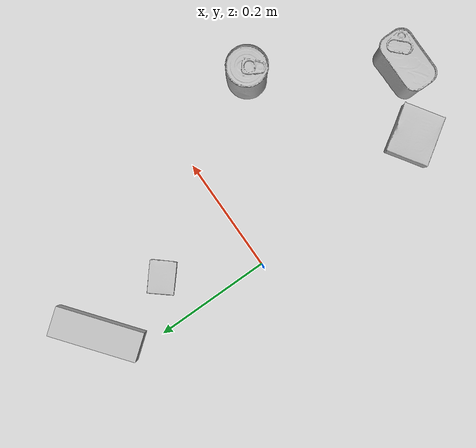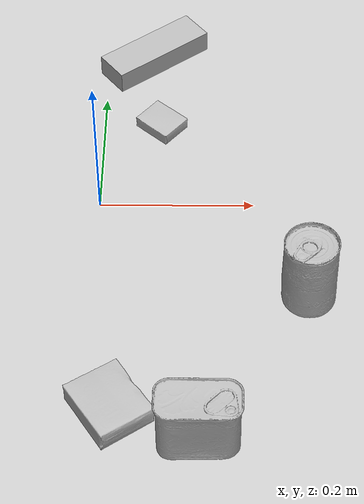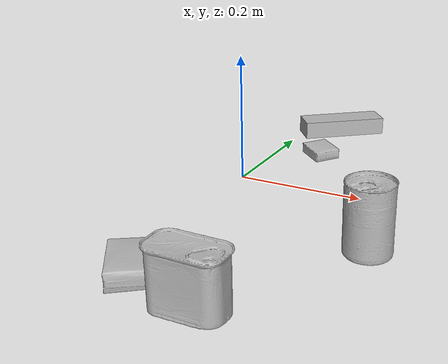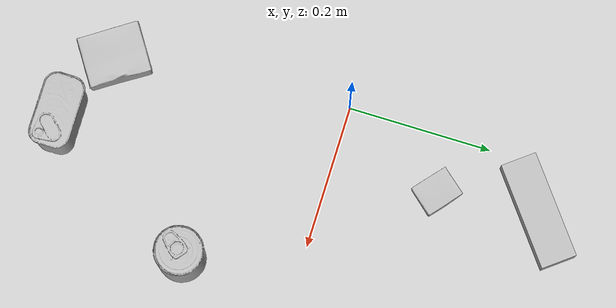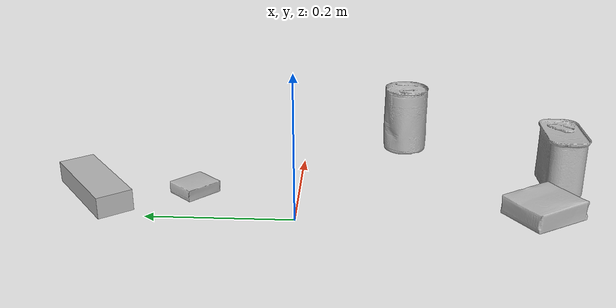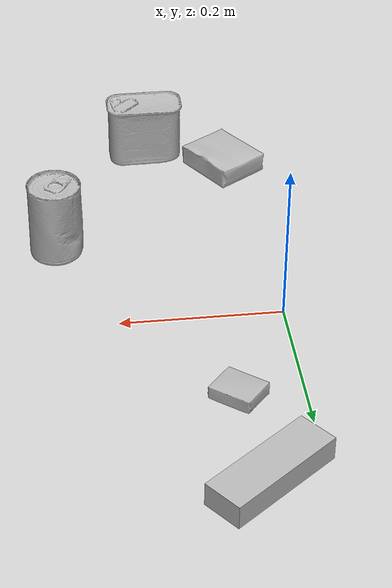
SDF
<sdf version="1.4">
  <world name="default">
    <light name="light1" type="point">
      <pose>0 0 1 0 0 0</pose>
      <diffuse>3 3 3 1</diffuse>
      <specular>3 3 3 1</specular>
    </light>
    <light name="light2" type="point">
      <pose>0 0.5 2 0 0 0</pose>
      <diffuse>1 1 1 1</diffuse>
      <specular>1 1 1 1</specular>
    </light>
    <light name="light3" type="point">
      <pose>0 0.5 2 0 0 0</pose>
      <diffuse>3 3 3 1</diffuse>
      <specular>3 3 3 1</specular>
    </light>
    <scene>
      <ambient>0.7 0.7 0.7</ambient>
    </scene>
    <model name="box1">
      <link name="link_box1">
        <collision name="default">
          <geometry>
            <mesh>
              <uri>model://pudding_box/collision_meshes/collision.obj</uri>
              <scale>0.5 0.5 0.5</scale>
            </mesh>
          </geometry>
          <surface>
            <friction>
              <ode>
                <mu>0.5</mu>
                <mu2>0.5</mu2>
              </ode>
            </friction>
          <contact>
        <ode>
            <max_vel>0</max_vel>
            <min_depth>0.0001</min_depth>
            <kp>1e8</kp>
        </ode>
    </contact></surface>
        </collision>
        <visual name="default">
          <geometry>
            <mesh>
              <uri>model://pudding_box/visual_meshes/visual.dae</uri>
              <scale>0.5 0.5 0.5</scale>
            </mesh>
          </geometry>
        </visual>
        <inertial>
          <mass>0.040720973163843155</mass>
          <pose>0.00024474109522998333 0.0004033942532259971 -0.0002594413817860186 0.005213101818388509 -0.006603799159636292 0.020079815843731863</pose>
          <inertia>
            <ixx>1.1508242e-05</ixx>
            <iyy>7.742825e-06</iyy>
            <izz>1.6994923e-05</izz>
            <ixy>0</ixy>
            <ixz>0</ixz>
            <iyz>0</iyz>
          </inertia>
        </inertial>
      </link>
      <pose>0.07706101983785629 0.14697317779064178 0.009862907230854034 0.022348190442501196 -0.011391931321446083 0.8650777158339081</pose>
    </model>
    <model name="box2">
      <link name="link_box2">
        <collision name="default">
          <geometry>
            <mesh>
              <uri>model://jenga/collision_meshes/collision.obj</uri>
              <scale>1.0 1.0 1.0</scale>
            </mesh>
          </geometry>
          <surface>
            <friction>
              <ode>
                <mu>0.5</mu>
                <mu2>0.5</mu2>
              </ode>
            </friction>
          <contact>
        <ode>
            <max_vel>0</max_vel>
            <min_depth>0.0001</min_depth>
            <kp>1e8</kp>
        </ode>
    </contact></surface>
        </collision>
        <visual name="default">
          <geometry>
            <mesh>
              <uri>model://jenga/visual_meshes/visual.dae</uri>
              <scale>1.0 1.0 1.0</scale>
            </mesh>
          </geometry>
        </visual>
        <inertial>
          <mass>0.2260044664144516</mass>
          <pose>-2.502855807051674e-07 -0.00010250010382151231 -4.0923401684267446e-05 0.0 -7.34215461761844e-07 0.0</pose>
          <inertia>
            <ixx>6.254092e-05</ixx>
            <iyy>0.00042377558</iyy>
            <izz>0.00045241645</izz>
            <ixy>0</ixy>
            <ixz>0</ixz>
            <iyz>0</iyz>
          </inertia>
        </inertial>
      </link>
      <pose>0.06347798556089401 0.2854156494140625 0.014999997802078724 6.3451322600917076e-09 -1.244936627315602e-09 -2.479317361135619</pose>
    </model>
    <model name="box3">
      <link name="link_box3">
        <collision name="default">
          <geometry>
            <mesh>
              <uri>model://gelatin_box/collision_meshes/collision.obj</uri>
              <scale>1.0 1.0 1.0</scale>
            </mesh>
          </geometry>
          <surface>
            <friction>
              <ode>
                <mu>0.5</mu>
                <mu2>0.5</mu2>
              </ode>
            </friction>
          <contact>
        <ode>
            <max_vel>0</max_vel>
            <min_depth>0.0001</min_depth>
            <kp>1e8</kp>
        </ode>
    </contact></surface>
        </collision>
        <visual name="default">
          <geometry>
            <mesh>
              <uri>model://gelatin_box/visual_meshes/visual.dae</uri>
              <scale>1.0 1.0 1.0</scale>
            </mesh>
          </geometry>
        </visual>
        <inertial>
          <mass>0.21249663829803467</mass>
          <pose>0.000431961816502735 0.00011156871914863586 -0.0003640321083366871 -0.0010503720865678746 -0.004755816824885886 0.016440563196489677</pose>
          <inertia>
            <ixx>0.00015000527</ixx>
            <iyy>0.000107147986</iyy>
            <izz>0.00022834145</izz>
            <ixy>0</ixy>
            <ixz>0</ixz>
            <iyz>0</iyz>
          </inertia>
        </inertial>
      </link>
      <pose>0.028093425557017326 -0.3285415768623352 0.015168316662311554 0.005597497121300062 -0.007304574586199275 0.574307131009283</pose>
    </model>
    <model name="can1">
      <link name="link_can1">
        <collision name="default">
          <geometry>
            <mesh>
              <uri>model://tomato_soup_can/collision_meshes/collision.obj</uri>
              <scale>1.0 1.0 1.0</scale>
            </mesh>
          </geometry>
          <surface>
            <friction>
              <ode>
                <mu>0.5</mu>
                <mu2>0.5</mu2>
              </ode>
            </friction>
          <contact>
        <ode>
            <max_vel>0</max_vel>
            <min_depth>0.0001</min_depth>
            <kp>1e8</kp>
        </ode>
    </contact></surface>
        </collision>
        <visual name="default">
          <geometry>
            <mesh>
              <uri>model://tomato_soup_can/visual_meshes/visual.dae</uri>
              <scale>1.0 1.0 1.0</scale>
            </mesh>
          </geometry>
        </visual>
        <inertial>
          <mass>0.23179346323013306</mass>
          <pose>0.00012652273289859295 0.00010805525380419567 -0.0017973976209759712 0.00702006934742656 0.00042299045868732465 -0.009902874376192201</pose>
          <inertia>
            <ixx>0.0002541419</ixx>
            <iyy>0.00025267305</iyy>
            <izz>0.00013171937</izz>
            <ixy>0</ixy>
            <ixz>0</ixz>
            <iyz>0</iyz>
          </inertia>
        </inertial>
      </link>
      <pose>0.26508963108062744 -0.1568845510482788 0.051274023950099945 -2.4002895024127693e-07 -4.4843134324621464e-07 -0.9614353217822285</pose>
    </model>
    <model name="can2">
      <link name="link_can2">
        <collision name="default">
          <geometry>
            <mesh>
              <uri>model://potted_meat_can/collision_meshes/collision.obj</uri>
              <scale>1.0 1.0 1.0</scale>
            </mesh>
          </geometry>
          <surface>
            <friction>
              <ode>
                <mu>0.5</mu>
                <mu2>0.5</mu2>
              </ode>
            </friction>
          <contact>
        <ode>
            <max_vel>0</max_vel>
            <min_depth>0.0001</min_depth>
            <kp>1e8</kp>
        </ode>
    </contact></surface>
        </collision>
        <visual name="default">
          <geometry>
            <mesh>
              <uri>model://potted_meat_can/visual_meshes/visual.dae</uri>
              <scale>1.0 1.0 1.0</scale>
            </mesh>
          </geometry>
        </visual>
        <inertial>
          <mass>0.3195023536682129</mass>
          <pose>0.00022888148669153452 -5.98910846747458e-05 -0.0006367437308654189 -0.028093352727545092 -0.0072326048209280834 0.015406269022640915</pose>
          <inertia>
            <ixx>0.00041100648</ixx>
            <iyy>0.0002497176</iyy>
            <izz>0.00029892896</izz>
            <ixy>0</ixy>
            <ixz>0</ixz>
            <iyz>0</iyz>
          </inertia>
        </inertial>
      </link>
      <pose>0.1314181089401245 -0.3711629807949066 0.04212801530957222 -5.442877963590162e-08 -4.786470305824079e-07 1.5605005787943413</pose>
    </model>
  <physics type="ode">
      <max_contacts>50</max_contacts>
      <ode>
        <solver>
          <type>quick</type>
          <iters>75</iters>
        </solver>
        <constraints>
          <contact_max_correcting_vel>0</contact_max_correcting_vel>
          <contact_surface_layer>0</contact_surface_layer>
        </constraints>
      </ode>
    </physics></world>
</sdf>
